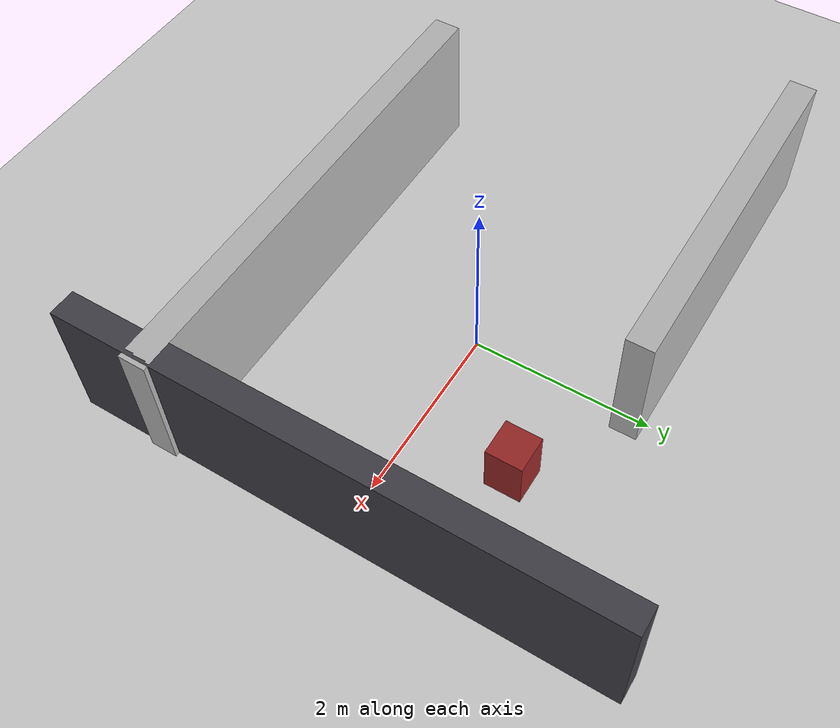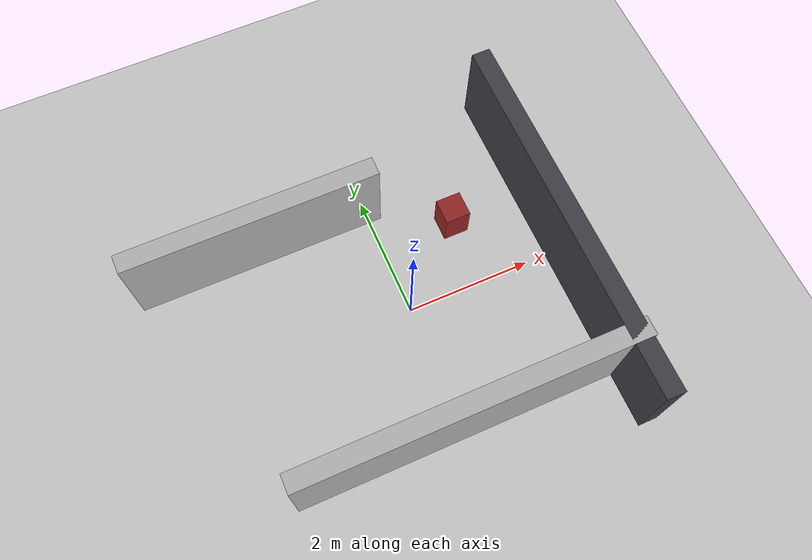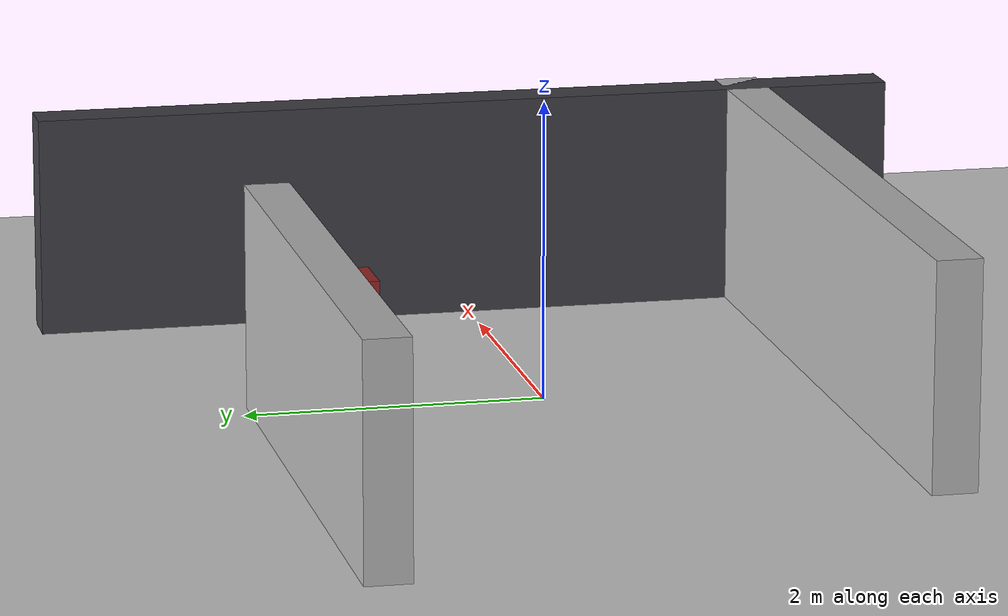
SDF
<?xml version="1.0"?>
<sdf version="1.9">
  <world name="neuro_nav_arena">
    <plugin filename="gz-sim-physics-system" name="gz::sim::systems::Physics"/>
    <plugin filename="gz-sim-scene-broadcaster-system" name="gz::sim::systems::SceneBroadcaster"/>
    <plugin filename="gz-sim-user-commands-system" name="gz::sim::systems::UserCommands"/>
    <plugin filename="gz-sim-sensors-system" name="gz::sim::systems::Sensors"><render_engine>ogre2</render_engine></plugin>
    <gravity>0 0 -9.8</gravity>
    <magnetic_field>6e-06 2.3e-05 -4.2e-05</magnetic_field>
    <include><uri>https://fuel.gazebosim.org/1.0/OpenRobotics/models/Ground Plane</uri></include>
    <include><uri>https://fuel.gazebosim.org/1.0/OpenRobotics/models/Sun</uri></include>
    <model name="maze_block_a"><static>true</static><pose>2.5 0.0 0.75 0 0 0</pose><link name="link"><collision name="c"><geometry><box><size>0.3 6.0 1.5</size></box></geometry></collision><visual name="v"><geometry><box><size>0.3 6.0 1.5</size></box></geometry><material><ambient>0.25 0.25 0.28 1</ambient></material></visual></link></model>
    <model name="maze_block_b"><static>true</static><pose>-1.8 1.8 0.75 0 0 0</pose><link name="link"><collision name="c"><geometry><box><size>4.0 0.3 1.5</size></box></geometry></collision><visual name="v"><geometry><box><size>4.0 0.3 1.5</size></box></geometry></visual></link></model>
    <model name="maze_block_c"><static>true</static><pose>0.0 -2.0 0.75 0 0 0</pose><link name="link"><collision name="c"><geometry><box><size>5.4 0.3 1.5</size></box></geometry></collision><visual name="v"><geometry><box><size>5.4 0.3 1.5</size></box></geometry></visual></link></model>
    <model name="dynamic_obstacle_hint"><static>false</static><pose>1.2 1.1 0.3 0 0 0</pose><link name="link"><inertial><mass>2.0</mass></inertial><collision name="c"><geometry><box><size>0.4 0.4 0.6</size></box></geometry></collision><visual name="v"><geometry><box><size>0.4 0.4 0.6</size></box></geometry><material><ambient>0.6 0.15 0.15 1</ambient></material></visual></link></model>
  </world>
</sdf>
